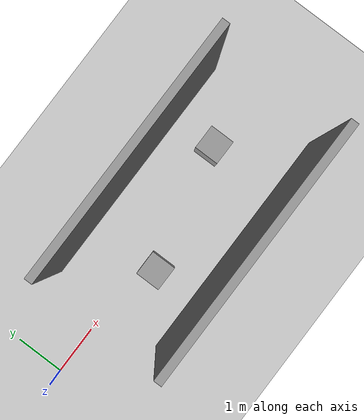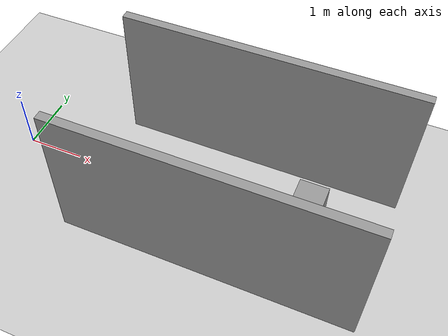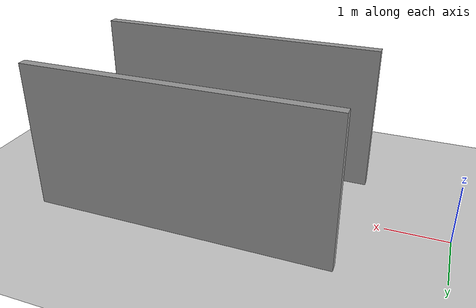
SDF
<sdf version="1.7">
 <world name="default">
  <light name="sun" type="directional">
   <pose>0 0 10 0 -0 0</pose>
   <diffuse>0.8 0.8 0.8 1</diffuse>
   <specular>0.2 0.2 0.2 1</specular>
   <attenuation>
    <range>1000</range>
    <constant>0.9</constant>
    <linear>0.01</linear>
    <quadratic>0.001</quadratic>
   </attenuation>
   <direction>-0.5 0.1 -0.9</direction>
   <spot><inner_angle>0</inner_angle><outer_angle>0</outer_angle><falloff>0</falloff></spot>
  </light>
  <model name="ground_plane">
   <static>1</static>
   <link name="link">
    <collision name="collision">
     <geometry><plane><normal>0 0 1</normal><size>100 100</size></plane></geometry>
     <surface><friction><ode><mu>100</mu><mu2>50</mu2></ode></friction></surface>
    </collision>
    <visual name="visual">
     <cast_shadows>0</cast_shadows>
     <geometry><plane><normal>0 0 1</normal><size>100 100</size></plane></geometry>
     <material>
      <script><uri>file://media/materials/scripts/gazebo.material</uri><name>Gazebo/Grey</name></script>
     </material>
    </visual>
   </link>
  </model>
  <gravity>0 0 -9.8</gravity>
  <magnetic_field>6e-06 2.3e-05 -4.2e-05</magnetic_field>
  <atmosphere type="adiabatic"/>
  <physics type="ode">
   <max_step_size>0.001</max_step_size>
   <real_time_factor>1</real_time_factor>
   <real_time_update_rate>1000</real_time_update_rate>
  </physics>
  <scene><ambient>0.4 0.4 0.4 1</ambient><background>0.7 0.7 0.7 1</background><shadows>1</shadows></scene>
  <audio><device>default</device></audio>
  <spherical_coordinates>
   <surface_model>EARTH_WGS84</surface_model>
   <latitude_deg>0</latitude_deg>
   <longitude_deg>0</longitude_deg>
   <elevation>0</elevation>
   <heading_deg>0</heading_deg>
  </spherical_coordinates>
  <model name="corridor2">
   <pose>3.59475 -0.026014 0 0 -0 0</pose>
   <link name="Wall_11">
    <collision name="Wall_11_Collision">
     <geometry><box><size>5 0.15 2.5</size></box></geometry>
     <pose>0 0 1.25 0 -0 0</pose>
    </collision>
    <visual name="Wall_11_Visual">
     <pose>0 0 1.25 0 -0 0</pose>
     <geometry><box><size>5 0.15 2.5</size></box></geometry>
     <material>
      <script><uri>file://media/materials/scripts/gazebo.material</uri><name>Gazebo/Grey</name></script>
      <ambient>1 1 1 1</ambient>
     </material>
     <meta><layer>0</layer></meta>
    </visual>
    <pose>0.460775 1.2495 0 0 -0 0</pose>
   </link>
   <link name="Wall_8">
    <collision name="Wall_8_Collision">
     <geometry><box><size>5 0.15 2.5</size></box></geometry>
     <pose>0 0 1.25 0 -0 0</pose>
    </collision>
    <visual name="Wall_8_Visual">
     <pose>0 0 1.25 0 -0 0</pose>
     <geometry><box><size>5 0.15 2.5</size></box></geometry>
     <material>
      <script><uri>file://media/materials/scripts/gazebo.material</uri><name>Gazebo/Grey</name></script>
      <ambient>1 1 1 1</ambient>
     </material>
     <meta><layer>0</layer></meta>
    </visual>
    <pose>0.4181 -1.2495 0 0 -0 0</pose>
   </link>
   <static>1</static>
  </model>
  <model name="box_0.5">
   <link name="link_0">
    <inertial>
     <mass>1</mass>
     <inertia>
      <ixx>0.166667</ixx>
      <ixy>0</ixy>
      <ixz>0</ixz>
      <iyy>0.166667</iyy>
      <iyz>0</iyz>
      <izz>0.166667</izz>
     </inertia>
    </inertial>
    <visual name="visual">
     <geometry><box><size>0.5 0.5 0.5</size></box></geometry>
     <material>
      <lighting>1</lighting>
      <script><uri>file://media/materials/scripts/gazebo.material</uri><name>Gazebo/Grey</name></script>
      <shader type="pixel"><normal_map>__default__</normal_map></shader>
      <ambient>0.3 0.3 0.3 1</ambient>
      <diffuse>0.7 0.7 0.7 1</diffuse>
      <specular>0.01 0.01 0.01 1</specular>
      <emissive>0 0 0 1</emissive>
     </material>
    </visual>
    <collision name="collision">
     <geometry><box><size>0.5 0.5 0.5</size></box></geometry>
     <surface>
      <friction>
       <ode><mu>1</mu><mu2>1</mu2><fdir1>0 0 0</fdir1><slip1>0</slip1><slip2>0</slip2></ode>
       <torsional>
        <coefficient>1</coefficient>
        <patch_radius>0</patch_radius>
        <surface_radius>0</surface_radius>
        <use_patch_radius>1</use_patch_radius>
        <ode><slip>0</slip></ode>
       </torsional>
      </friction>
      <bounce><restitution_coefficient>0</restitution_coefficient><threshold>1e+06</threshold></bounce>
      <contact>
       <collide_without_contact>0</collide_without_contact>
       <collide_without_contact_bitmask>1</collide_without_contact_bitmask>
       <collide_bitmask>1</collide_bitmask>
       <ode>
        <soft_cfm>0</soft_cfm>
        <soft_erp>0.2</soft_erp>
        <kp>1e+13</kp>
        <kd>1</kd>
        <max_vel>0.01</max_vel>
        <min_depth>0</min_depth>
       </ode>
       <bullet>
        <split_impulse>1</split_impulse>
        <split_impulse_penetration_threshold>-0.01</split_impulse_penetration_threshold>
        <soft_cfm>0</soft_cfm>
        <soft_erp>0.2</soft_erp>
        <kp>1e+13</kp>
        <kd>1</kd>
       </bullet>
      </contact>
     </surface>
    </collision>
   </link>
   <static>0</static>
   <pose>2.73217 -0.284582 0.5 0 -0 0</pose>
  </model>
  <model name="box_0.5_clone">
   <link name="link_0">
    <inertial>
     <mass>1</mass>
     <inertia>
      <ixx>0.166667</ixx>
      <ixy>0</ixy>
      <ixz>0</ixz>
      <iyy>0.166667</iyy>
      <iyz>0</iyz>
      <izz>0.166667</izz>
     </inertia>
    </inertial>
    <visual name="visual">
     <geometry><box><size>0.5 0.5 0.5</size></box></geometry>
     <material>
      <lighting>1</lighting>
      <script><uri>file://media/materials/scripts/gazebo.material</uri><name>Gazebo/Grey</name></script>
      <shader type="pixel"><normal_map>__default__</normal_map></shader>
      <ambient>0.3 0.3 0.3 1</ambient>
      <diffuse>0.7 0.7 0.7 1</diffuse>
      <specular>0.01 0.01 0.01 1</specular>
      <emissive>0 0 0 1</emissive>
     </material>
    </visual>
    <collision name="collision">
     <geometry><box><size>0.5 0.5 0.5</size></box></geometry>
     <surface>
      <friction>
       <ode><mu>1</mu><mu2>1</mu2><fdir1>0 0 0</fdir1><slip1>0</slip1><slip2>0</slip2></ode>
       <torsional>
        <coefficient>1</coefficient>
        <patch_radius>0</patch_radius>
        <surface_radius>0</surface_radius>
        <use_patch_radius>1</use_patch_radius>
        <ode><slip>0</slip></ode>
       </torsional>
      </friction>
      <bounce><restitution_coefficient>0</restitution_coefficient><threshold>1e+06</threshold></bounce>
      <contact>
       <collide_without_contact>0</collide_without_contact>
       <collide_without_contact_bitmask>1</collide_without_contact_bitmask>
       <collide_bitmask>1</collide_bitmask>
       <ode>
        <soft_cfm>0</soft_cfm>
        <soft_erp>0.2</soft_erp>
        <kp>1e+13</kp>
        <kd>1</kd>
        <max_vel>0.01</max_vel>
        <min_depth>0</min_depth>
       </ode>
       <bullet>
        <split_impulse>1</split_impulse>
        <split_impulse_penetration_threshold>-0.01</split_impulse_penetration_threshold>
        <soft_cfm>0</soft_cfm>
        <soft_erp>0.2</soft_erp>
        <kp>1e+13</kp>
        <kd>1</kd>
       </bullet>
      </contact>
     </surface>
    </collision>
   </link>
   <static>0</static>
   <pose>5.22761 0.25139 0.5 0 -0 0</pose>
  </model>
 </world>
</sdf>
